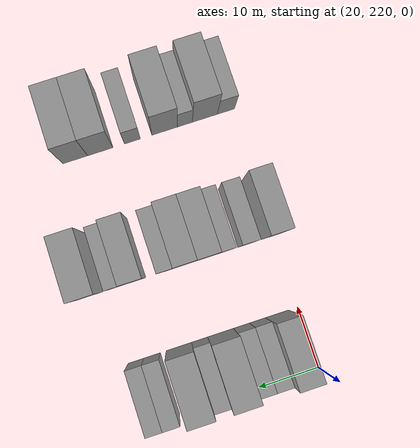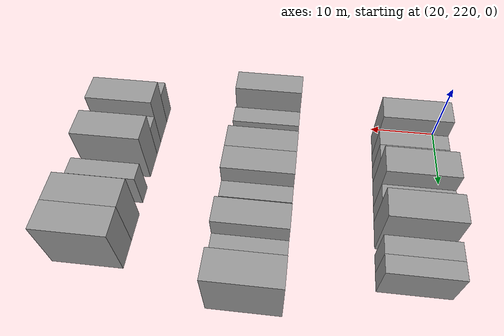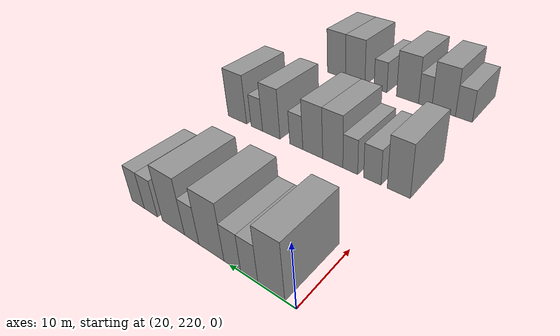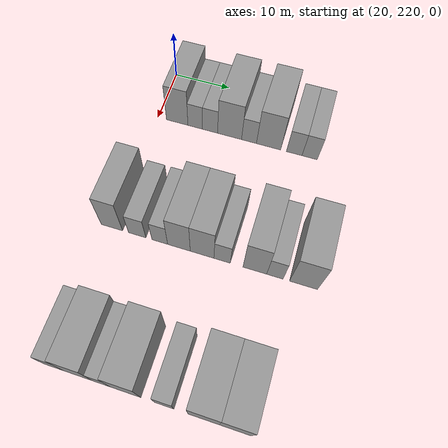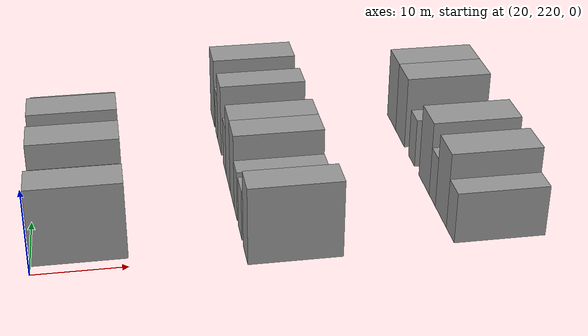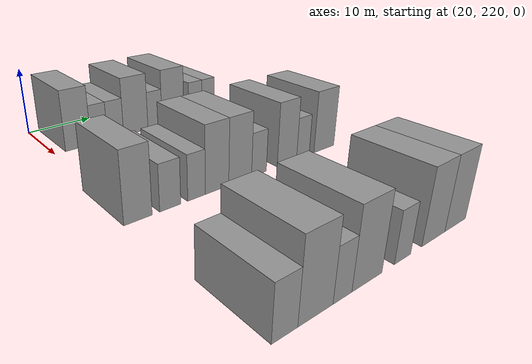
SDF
<sdf version="1.6">
 <world name="default">
  <model name="building_116">
   <static>1</static>
   <pose>25.0000 223.5503 0 0.000000 0.000000 0.000000</pose>
   <link name="link">
    <pose>0 0 4.50 0 0 0</pose>
    <collision name="collision"><geometry><box><size>10.0000 3.9442 9.0000</size></box></geometry></collision>
    <visual name="visual">
     <cast_shadows>0</cast_shadows>
     <geometry><box><size>10.0000 3.9442 9.0000</size></box></geometry>
     <material>
      <script>
       <uri>model://grey_wall/materials/scripts</uri>
       <uri>model://grey_wall/materials/textures</uri>
       <name>vrc/grey_wall</name>
      </script>
     </material>
    </visual>
   </link>
  </model>
  <model name="building_117">
   <static>1</static>
   <pose>25.0000 226.8522 0 0.000000 0.000000 0.000000</pose>
   <link name="link">
    <pose>0 0 3.00 0 0 0</pose>
    <collision name="collision"><geometry><box><size>10.0000 2.6597 6.0000</size></box></geometry></collision>
    <visual name="visual">
     <cast_shadows>0</cast_shadows>
     <geometry><box><size>10.0000 2.6597 6.0000</size></box></geometry>
     <material>
      <script>
       <uri>model://grey_wall/materials/scripts</uri>
       <uri>model://grey_wall/materials/textures</uri>
       <name>vrc/grey_wall</name>
      </script>
     </material>
    </visual>
   </link>
  </model>
  <model name="building_118">
   <static>1</static>
   <pose>25.0000 229.5475 0 0.000000 0.000000 0.000000</pose>
   <link name="link">
    <pose>0 0 3.00 0 0 0</pose>
    <collision name="collision"><geometry><box><size>10.0000 2.7309 6.0000</size></box></geometry></collision>
    <visual name="visual">
     <cast_shadows>0</cast_shadows>
     <geometry><box><size>10.0000 2.7309 6.0000</size></box></geometry>
     <material>
      <script>
       <uri>model://grey_wall/materials/scripts</uri>
       <uri>model://grey_wall/materials/textures</uri>
       <name>vrc/grey_wall</name>
      </script>
     </material>
    </visual>
   </link>
  </model>
  <model name="building_119">
   <static>1</static>
   <pose>25.0000 233.0678 0 0.000000 0.000000 0.000000</pose>
   <link name="link">
    <pose>0 0 4.50 0 0 0</pose>
    <collision name="collision"><geometry><box><size>10.0000 4.3097 9.0000</size></box></geometry></collision>
    <visual name="visual">
     <cast_shadows>0</cast_shadows>
     <geometry><box><size>10.0000 4.3097 9.0000</size></box></geometry>
     <material>
      <script>
       <uri>model://grey_wall/materials/scripts</uri>
       <uri>model://grey_wall/materials/textures</uri>
       <name>vrc/grey_wall</name>
      </script>
     </material>
    </visual>
   </link>
  </model>
  <model name="building_120">
   <static>1</static>
   <pose>25.0000 236.5413 0 0.000000 0.000000 0.000000</pose>
   <link name="link">
    <pose>0 0 3.00 0 0 0</pose>
    <collision name="collision"><geometry><box><size>10.0000 2.6375 6.0000</size></box></geometry></collision>
    <visual name="visual">
     <cast_shadows>0</cast_shadows>
     <geometry><box><size>10.0000 2.6375 6.0000</size></box></geometry>
     <material>
      <script>
       <uri>model://grey_wall/materials/scripts</uri>
       <uri>model://grey_wall/materials/textures</uri>
       <name>vrc/grey_wall</name>
      </script>
     </material>
    </visual>
   </link>
  </model>
  <model name="building_121">
   <static>1</static>
   <pose>25.0000 239.9875 0 0.000000 0.000000 0.000000</pose>
   <link name="link">
    <pose>0 0 4.50 0 0 0</pose>
    <collision name="collision"><geometry><box><size>10.0000 4.2548 9.0000</size></box></geometry></collision>
    <visual name="visual">
     <cast_shadows>0</cast_shadows>
     <geometry><box><size>10.0000 4.2548 9.0000</size></box></geometry>
     <material>
      <script>
       <uri>model://grey_wall/materials/scripts</uri>
       <uri>model://grey_wall/materials/textures</uri>
       <name>vrc/grey_wall</name>
      </script>
     </material>
    </visual>
   </link>
  </model>
  <model name="building_122">
   <static>1</static>
   <pose>25.0000 244.4672 0 0.000000 0.000000 0.000000</pose>
   <link name="link">
    <pose>0 0 3.00 0 0 0</pose>
    <collision name="collision"><geometry><box><size>10.0000 2.7047 6.0000</size></box></geometry></collision>
    <visual name="visual">
     <cast_shadows>0</cast_shadows>
     <geometry><box><size>10.0000 2.7047 6.0000</size></box></geometry>
     <material>
      <script>
       <uri>model://grey_wall/materials/scripts</uri>
       <uri>model://grey_wall/materials/textures</uri>
       <name>vrc/grey_wall</name>
      </script>
     </material>
    </visual>
   </link>
  </model>
  <model name="building_123">
   <static>1</static>
   <pose>25.0000 247.1309 0 0.000000 0.000000 0.000000</pose>
   <link name="link">
    <pose>0 0 3.00 0 0 0</pose>
    <collision name="collision"><geometry><box><size>10.0000 2.6227 6.0000</size></box></geometry></collision>
    <visual name="visual">
     <cast_shadows>0</cast_shadows>
     <geometry><box><size>10.0000 2.6227 6.0000</size></box></geometry>
     <material>
      <script>
       <uri>model://grey_wall/materials/scripts</uri>
       <uri>model://grey_wall/materials/textures</uri>
       <name>vrc/grey_wall</name>
      </script>
     </material>
    </visual>
   </link>
  </model>
  <model name="building_235">
   <static>1</static>
   <pose>47.0000 220.3192 0 0.000000 0.000000 0.000000</pose>
   <link name="link">
    <pose>0 0 4.50 0 0 0</pose>
    <collision name="collision"><geometry><box><size>10.0000 3.6106 9.0000</size></box></geometry></collision>
    <visual name="visual">
     <cast_shadows>0</cast_shadows>
     <geometry><box><size>10.0000 3.6106 9.0000</size></box></geometry>
     <material>
      <script>
       <uri>model://grey_wall/materials/scripts</uri>
       <uri>model://grey_wall/materials/textures</uri>
       <name>vrc/grey_wall</name>
      </script>
     </material>
    </visual>
   </link>
  </model>
  <model name="building_236">
   <static>1</static>
   <pose>47.0000 224.5688 0 0.000000 0.000000 0.000000</pose>
   <link name="link">
    <pose>0 0 3.00 0 0 0</pose>
    <collision name="collision"><geometry><box><size>10.0000 2.8887 6.0000</size></box></geometry></collision>
    <visual name="visual">
     <cast_shadows>0</cast_shadows>
     <geometry><box><size>10.0000 2.8887 6.0000</size></box></geometry>
     <material>
      <script>
       <uri>model://grey_wall/materials/scripts</uri>
       <uri>model://grey_wall/materials/textures</uri>
       <name>vrc/grey_wall</name>
      </script>
     </material>
    </visual>
   </link>
  </model>
  <model name="building_237">
   <static>1</static>
   <pose>47.0000 228.3038 0 0.000000 0.000000 0.000000</pose>
   <link name="link">
    <pose>0 0 3.00 0 0 0</pose>
    <collision name="collision"><geometry><box><size>10.0000 2.5812 6.0000</size></box></geometry></collision>
    <visual name="visual">
     <cast_shadows>0</cast_shadows>
     <geometry><box><size>10.0000 2.5812 6.0000</size></box></geometry>
     <material>
      <script>
       <uri>model://grey_wall/materials/scripts</uri>
       <uri>model://grey_wall/materials/textures</uri>
       <name>vrc/grey_wall</name>
      </script>
     </material>
    </visual>
   </link>
  </model>
  <model name="building_238">
   <static>1</static>
   <pose>47.0000 231.4331 0 0.000000 0.000000 0.000000</pose>
   <link name="link">
    <pose>0 0 4.50 0 0 0</pose>
    <collision name="collision"><geometry><box><size>10.0000 3.6776 9.0000</size></box></geometry></collision>
    <visual name="visual">
     <cast_shadows>0</cast_shadows>
     <geometry><box><size>10.0000 3.6776 9.0000</size></box></geometry>
     <material>
      <script>
       <uri>model://grey_wall/materials/scripts</uri>
       <uri>model://grey_wall/materials/textures</uri>
       <name>vrc/grey_wall</name>
      </script>
     </material>
    </visual>
   </link>
  </model>
  <model name="building_239">
   <static>1</static>
   <pose>47.0000 235.1709 0 0.000000 0.000000 0.000000</pose>
   <link name="link">
    <pose>0 0 4.50 0 0 0</pose>
    <collision name="collision"><geometry><box><size>10.0000 3.7980 9.0000</size></box></geometry></collision>
    <visual name="visual">
     <cast_shadows>0</cast_shadows>
     <geometry><box><size>10.0000 3.7980 9.0000</size></box></geometry>
     <material>
      <script>
       <uri>model://grey_wall/materials/scripts</uri>
       <uri>model://grey_wall/materials/textures</uri>
       <name>vrc/grey_wall</name>
      </script>
     </material>
    </visual>
   </link>
  </model>
  <model name="building_240">
   <static>1</static>
   <pose>47.0000 238.3701 0 0.000000 0.000000 0.000000</pose>
   <link name="link">
    <pose>0 0 3.00 0 0 0</pose>
    <collision name="collision"><geometry><box><size>10.0000 2.6005 6.0000</size></box></geometry></collision>
    <visual name="visual">
     <cast_shadows>0</cast_shadows>
     <geometry><box><size>10.0000 2.6005 6.0000</size></box></geometry>
     <material>
      <script>
       <uri>model://grey_wall/materials/scripts</uri>
       <uri>model://grey_wall/materials/textures</uri>
       <name>vrc/grey_wall</name>
      </script>
     </material>
    </visual>
   </link>
  </model>
  <model name="building_241">
   <static>1</static>
   <pose>47.0000 243.5212 0 0.000000 0.000000 0.000000</pose>
   <link name="link">
    <pose>0 0 4.50 0 0 0</pose>
    <collision name="collision"><geometry><box><size>10.0000 3.7017 9.0000</size></box></geometry></collision>
    <visual name="visual">
     <cast_shadows>0</cast_shadows>
     <geometry><box><size>10.0000 3.7017 9.0000</size></box></geometry>
     <material>
      <script>
       <uri>model://grey_wall/materials/scripts</uri>
       <uri>model://grey_wall/materials/textures</uri>
       <name>vrc/grey_wall</name>
      </script>
     </material>
    </visual>
   </link>
  </model>
  <model name="building_242">
   <static>1</static>
   <pose>47.0000 246.6331 0 0.000000 0.000000 0.000000</pose>
   <link name="link">
    <pose>0 0 3.00 0 0 0</pose>
    <collision name="collision"><geometry><box><size>10.0000 2.5220 6.0000</size></box></geometry></collision>
    <visual name="visual">
     <cast_shadows>0</cast_shadows>
     <geometry><box><size>10.0000 2.5220 6.0000</size></box></geometry>
     <material>
      <script>
       <uri>model://grey_wall/materials/scripts</uri>
       <uri>model://grey_wall/materials/textures</uri>
       <name>vrc/grey_wall</name>
      </script>
     </material>
    </visual>
   </link>
  </model>
  <model name="building_243">
   <static>1</static>
   <pose>47.0000 251.0231 0 0.000000 0.000000 0.000000</pose>
   <link name="link">
    <pose>0 0 4.50 0 0 0</pose>
    <collision name="collision"><geometry><box><size>10.0000 4.2579 9.0000</size></box></geometry></collision>
    <visual name="visual">
     <cast_shadows>0</cast_shadows>
     <geometry><box><size>10.0000 4.2579 9.0000</size></box></geometry>
     <material>
      <script>
       <uri>model://grey_wall/materials/scripts</uri>
       <uri>model://grey_wall/materials/textures</uri>
       <name>vrc/grey_wall</name>
      </script>
     </material>
    </visual>
   </link>
  </model>
  <model name="building_363">
   <static>1</static>
   <pose>69.0000 220.6787 0 0.000000 0.000000 0.000000</pose>
   <link name="link">
    <pose>0 0 3.00 0 0 0</pose>
    <collision name="collision"><geometry><box><size>10.0000 2.9921 6.0000</size></box></geometry></collision>
    <visual name="visual">
     <cast_shadows>0</cast_shadows>
     <geometry><box><size>10.0000 2.9921 6.0000</size></box></geometry>
     <material>
      <script>
       <uri>model://grey_wall/materials/scripts</uri>
       <uri>model://grey_wall/materials/textures</uri>
       <name>vrc/grey_wall</name>
      </script>
     </material>
    </visual>
   </link>
  </model>
  <model name="building_364">
   <static>1</static>
   <pose>69.0000 224.3643 0 0.000000 0.000000 0.000000</pose>
   <link name="link">
    <pose>0 0 4.50 0 0 0</pose>
    <collision name="collision"><geometry><box><size>10.0000 4.3792 9.0000</size></box></geometry></collision>
    <visual name="visual">
     <cast_shadows>0</cast_shadows>
     <geometry><box><size>10.0000 4.3792 9.0000</size></box></geometry>
     <material>
      <script>
       <uri>model://grey_wall/materials/scripts</uri>
       <uri>model://grey_wall/materials/textures</uri>
       <name>vrc/grey_wall</name>
      </script>
     </material>
    </visual>
   </link>
  </model>
  <model name="building_365">
   <static>1</static>
   <pose>69.0000 227.8349 0 0.000000 0.000000 0.000000</pose>
   <link name="link">
    <pose>0 0 3.00 0 0 0</pose>
    <collision name="collision"><geometry><box><size>10.0000 2.5620 6.0000</size></box></geometry></collision>
    <visual name="visual">
     <cast_shadows>0</cast_shadows>
     <geometry><box><size>10.0000 2.5620 6.0000</size></box></geometry>
     <material>
      <script>
       <uri>model://grey_wall/materials/scripts</uri>
       <uri>model://grey_wall/materials/textures</uri>
       <name>vrc/grey_wall</name>
      </script>
     </material>
    </visual>
   </link>
  </model>
  <model name="building_366">
   <static>1</static>
   <pose>69.0000 231.3355 0 0.000000 0.000000 0.000000</pose>
   <link name="link">
    <pose>0 0 4.50 0 0 0</pose>
    <collision name="collision"><geometry><box><size>10.0000 4.4392 9.0000</size></box></geometry></collision>
    <visual name="visual">
     <cast_shadows>0</cast_shadows>
     <geometry><box><size>10.0000 4.4392 9.0000</size></box></geometry>
     <material>
      <script>
       <uri>model://grey_wall/materials/scripts</uri>
       <uri>model://grey_wall/materials/textures</uri>
       <name>vrc/grey_wall</name>
      </script>
     </material>
    </visual>
   </link>
  </model>
  <model name="building_367">
   <static>1</static>
   <pose>69.0000 236.9206 0 0.000000 0.000000 0.000000</pose>
   <link name="link">
    <pose>0 0 3.00 0 0 0</pose>
    <collision name="collision"><geometry><box><size>10.0000 2.7310 6.0000</size></box></geometry></collision>
    <visual name="visual">
     <cast_shadows>0</cast_shadows>
     <geometry><box><size>10.0000 2.7310 6.0000</size></box></geometry>
     <material>
      <script>
       <uri>model://grey_wall/materials/scripts</uri>
       <uri>model://grey_wall/materials/textures</uri>
       <name>vrc/grey_wall</name>
      </script>
     </material>
    </visual>
   </link>
  </model>
  <model name="building_368">
   <static>1</static>
   <pose>69.0000 242.4607 0 0.000000 0.000000 0.000000</pose>
   <link name="link">
    <pose>0 0 4.50 0 0 0</pose>
    <collision name="collision"><geometry><box><size>10.0000 4.3491 9.0000</size></box></geometry></collision>
    <visual name="visual">
     <cast_shadows>0</cast_shadows>
     <geometry><box><size>10.0000 4.3491 9.0000</size></box></geometry>
     <material>
      <script>
       <uri>model://grey_wall/materials/scripts</uri>
       <uri>model://grey_wall/materials/textures</uri>
       <name>vrc/grey_wall</name>
      </script>
     </material>
    </visual>
   </link>
  </model>
  <model name="building_369">
   <static>1</static>
   <pose>69.0000 246.7702 0 0.000000 0.000000 0.000000</pose>
   <link name="link">
    <pose>0 0 4.50 0 0 0</pose>
    <collision name="collision"><geometry><box><size>10.0000 4.2700 9.0000</size></box></geometry></collision>
    <visual name="visual">
     <cast_shadows>0</cast_shadows>
     <geometry><box><size>10.0000 4.2700 9.0000</size></box></geometry>
     <material>
      <script>
       <uri>model://grey_wall/materials/scripts</uri>
       <uri>model://grey_wall/materials/textures</uri>
       <name>vrc/grey_wall</name>
      </script>
     </material>
    </visual>
   </link>
  </model>
 </world>
</sdf>
